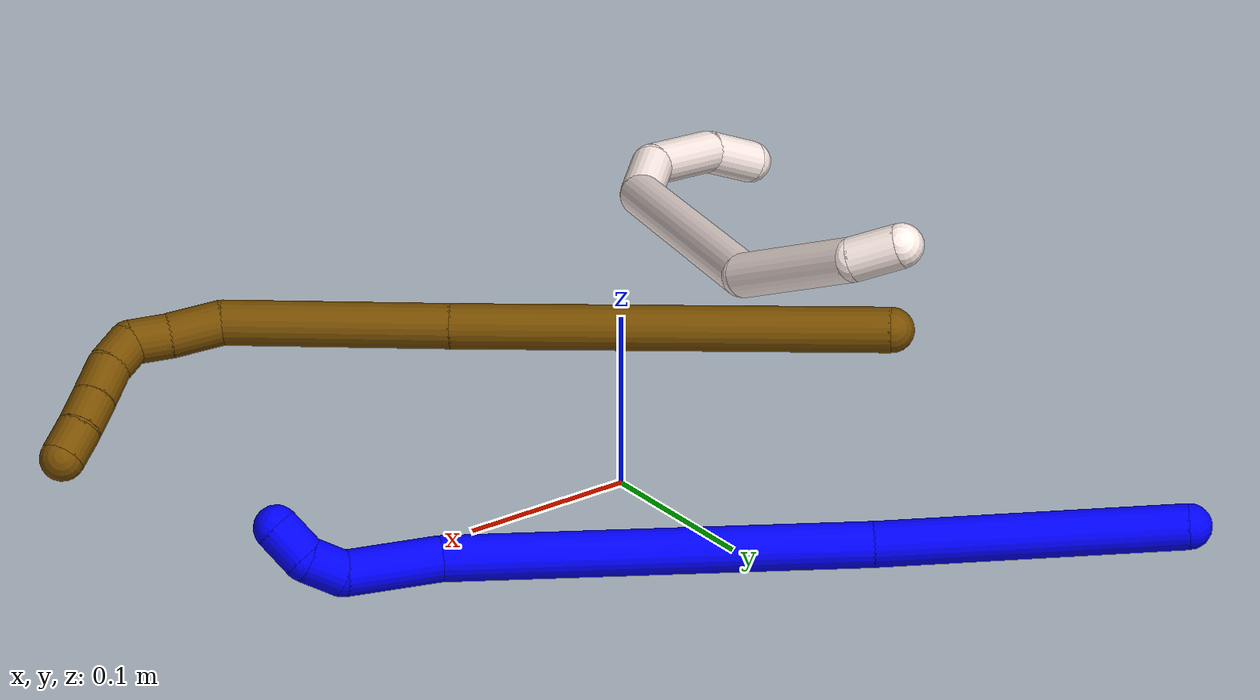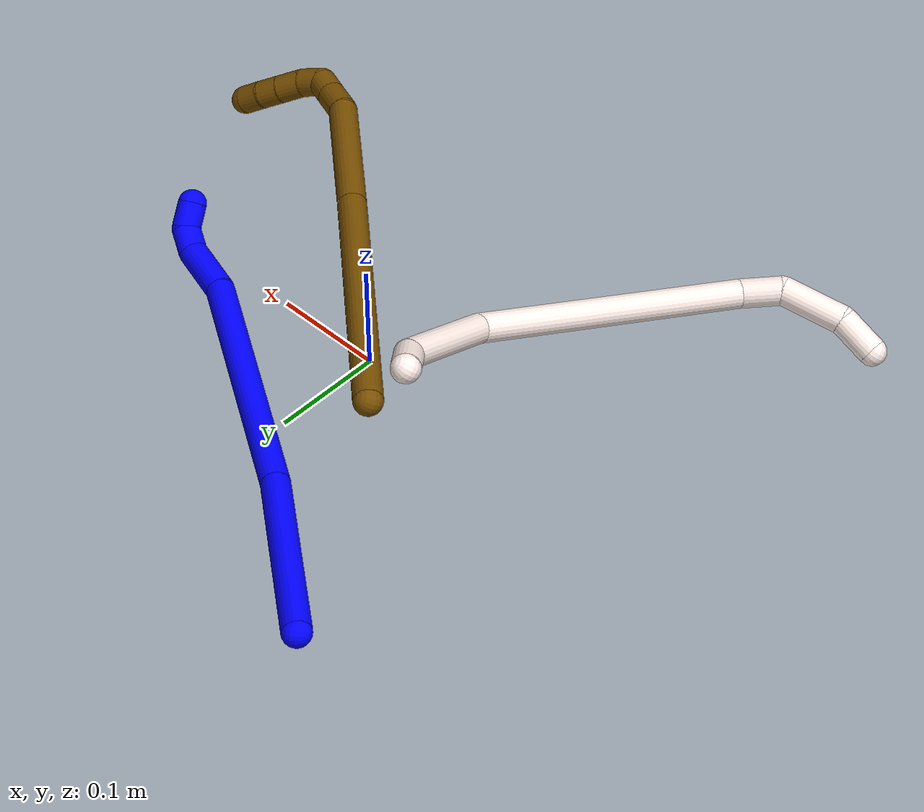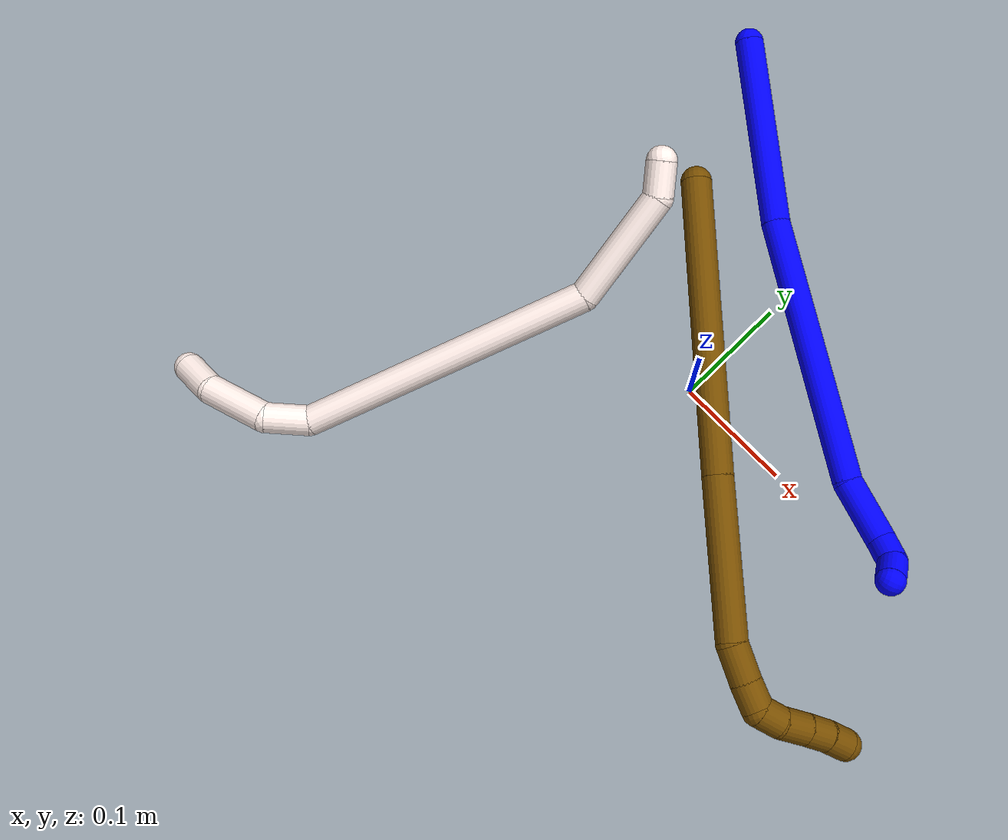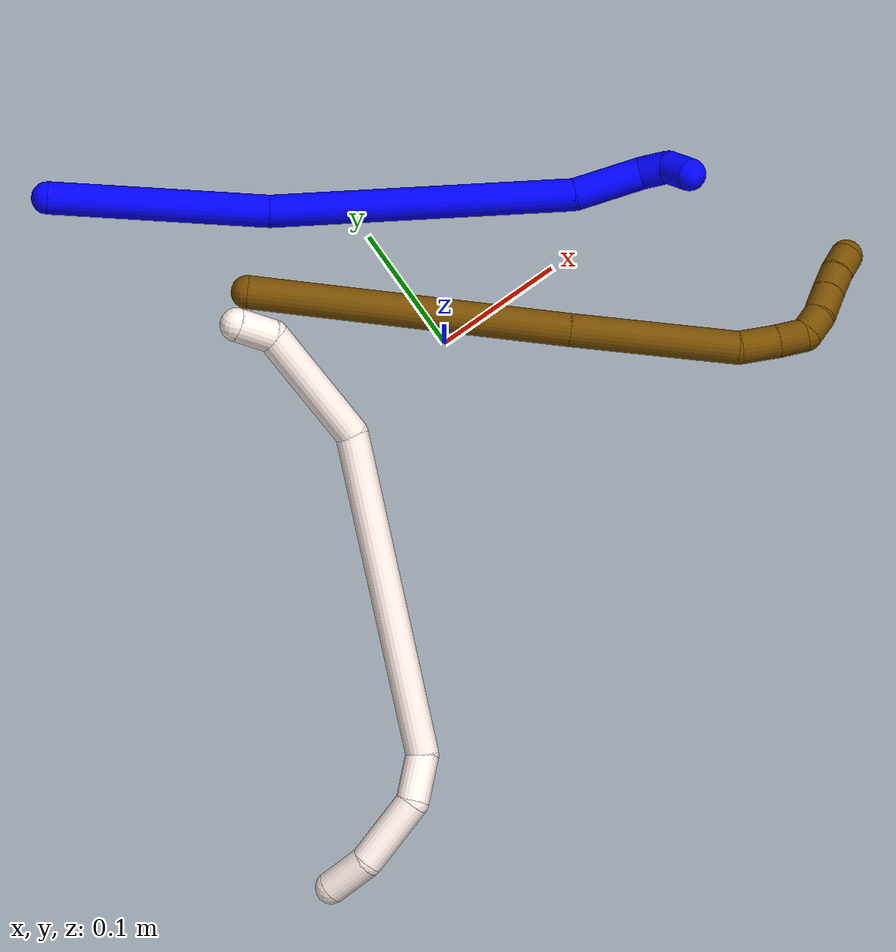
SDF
<sdf version="1.7">
 <world name="default">
  <model name="1">
   <static>0</static>
   <link name="1">
    <collision name="collision-cylinder-e_1_1_4">
     <pose>0.070437 -0.018913 0.04232 0.420274 0.988752 0.228926</pose>
     <geometry><cylinder><radius>0.0125</radius><length>0.168642</length></cylinder></geometry>
     <surface>
      <friction><ode><mu>1.16</mu><mu2>1.16</mu2><slip1>0</slip1><slip2>0</slip2></ode></friction>
      <contact><ode><kp>1e+06</kp><kd>1</kd><max_vel>0</max_vel><min_depth>0.001</min_depth></ode></contact>
     </surface>
    </collision>
    <visual name="visual-cylinder-e_1_1_4">
     <pose>0.070437 -0.018913 0.04232 0.420274 0.988752 0.228926</pose>
     <geometry><cylinder><radius>0.0125</radius><length>0.168642</length></cylinder></geometry>
     <material><ambient>0 0 1 1</ambient></material>
    </visual>
    <collision name="collision-cylinder-e_2_4_5">
     <pose>0.229159 -0.072352 0.151848 0.474563 0.862929 0.221768</pose>
     <geometry><cylinder><radius>0.0125</radius><length>0.232406</length></cylinder></geometry>
     <surface>
      <friction><ode><mu>1.16</mu><mu2>1.16</mu2><slip1>0</slip1><slip2>0</slip2></ode></friction>
      <contact><ode><kp>1e+06</kp><kd>1</kd><max_vel>0</max_vel><min_depth>0.001</min_depth></ode></contact>
     </surface>
    </collision>
    <visual name="visual-cylinder-e_2_4_5">
     <pose>0.229159 -0.072352 0.151848 0.474563 0.862929 0.221768</pose>
     <geometry><cylinder><radius>0.0125</radius><length>0.232406</length></cylinder></geometry>
     <material><ambient>0 0 1 1</ambient></material>
    </visual>
    <collision name="collision-cylinder-e_3_5_6">
     <pose>0.333214 -0.114386 0.239742 0.348195 0.621769 0.1129</pose>
     <geometry><cylinder><radius>0.0125</radius><length>0.054149</length></cylinder></geometry>
     <surface>
      <friction><ode><mu>1.16</mu><mu2>1.16</mu2><slip1>0</slip1><slip2>0</slip2></ode></friction>
      <contact><ode><kp>1e+06</kp><kd>1</kd><max_vel>0</max_vel><min_depth>0.001</min_depth></ode></contact>
     </surface>
    </collision>
    <visual name="visual-cylinder-e_3_5_6">
     <pose>0.333214 -0.114386 0.239742 0.348195 0.621769 0.1129</pose>
     <geometry><cylinder><radius>0.0125</radius><length>0.054149</length></cylinder></geometry>
     <material><ambient>0 0 1 1</ambient></material>
    </visual>
    <collision name="collision-cylinder-e_4_6_7">
     <pose>0.354595 -0.129693 0.266016 0.949073 0.529192 0.276589</pose>
     <geometry><cylinder><radius>0.0125</radius><length>0.022226</length></cylinder></geometry>
     <surface>
      <friction><ode><mu>1.16</mu><mu2>1.16</mu2><slip1>0</slip1><slip2>0</slip2></ode></friction>
      <contact><ode><kp>1e+06</kp><kd>1</kd><max_vel>0</max_vel><min_depth>0.001</min_depth></ode></contact>
     </surface>
    </collision>
    <visual name="visual-cylinder-e_4_6_7">
     <pose>0.354595 -0.129693 0.266016 0.949073 0.529192 0.276589</pose>
     <geometry><cylinder><radius>0.0125</radius><length>0.022226</length></cylinder></geometry>
     <material><ambient>0 0 1 1</ambient></material>
    </visual>
    <collision name="collision-cylinder-e_5_7_2">
     <pose>0.366682 -0.146725 0.271142 1.6207 0.611125 0.640362</pose>
     <geometry><cylinder><radius>0.0125</radius><length>0.022577</length></cylinder></geometry>
     <surface>
      <friction><ode><mu>1.16</mu><mu2>1.16</mu2><slip1>0</slip1><slip2>0</slip2></ode></friction>
      <contact><ode><kp>1e+06</kp><kd>1</kd><max_vel>0</max_vel><min_depth>0.001</min_depth></ode></contact>
     </surface>
    </collision>
    <visual name="visual-cylinder-e_5_7_2">
     <pose>0.366682 -0.146725 0.271142 1.6207 0.611125 0.640362</pose>
     <geometry><cylinder><radius>0.0125</radius><length>0.022577</length></cylinder></geometry>
     <material><ambient>0 0 1 1</ambient></material>
    </visual>
    <collision name="collision-sphere-2">
     <pose>0.373159 -0.155959 0.270681 0 -0 0</pose>
     <geometry><sphere><radius>0.0125</radius></sphere></geometry>
     <surface>
      <friction><ode><mu>1.16</mu><mu2>1.16</mu2><slip1>0</slip1><slip2>0</slip2></ode></friction>
      <contact><ode><kp>1e+06</kp><kd>1</kd><max_vel>0</max_vel><min_depth>0.001</min_depth></ode></contact>
     </surface>
    </collision>
    <visual name="visual-sphere-2">
     <pose>0.373159 -0.155959 0.270681 0 -0 0</pose>
     <geometry><sphere><radius>0.0125</radius></sphere></geometry>
     <material><ambient>0 0 1 1</ambient></material>
    </visual>
    <collision name="collision-sphere-7">
     <pose>0.360205 -0.137491 0.271603 0 -0 0</pose>
     <geometry><sphere><radius>0.0125</radius></sphere></geometry>
     <surface>
      <friction><ode><mu>1.16</mu><mu2>1.16</mu2><slip1>0</slip1><slip2>0</slip2></ode></friction>
      <contact><ode><kp>1e+06</kp><kd>1</kd><max_vel>0</max_vel><min_depth>0.001</min_depth></ode></contact>
     </surface>
    </collision>
    <visual name="visual-sphere-7">
     <pose>0.360205 -0.137491 0.271603 0 -0 0</pose>
     <geometry><sphere><radius>0.0125</radius></sphere></geometry>
     <material><ambient>0 0 1 1</ambient></material>
    </visual>
    <collision name="collision-sphere-6">
     <pose>0.348984 -0.121895 0.260429 0 -0 0</pose>
     <geometry><sphere><radius>0.0125</radius></sphere></geometry>
     <surface>
      <friction><ode><mu>1.16</mu><mu2>1.16</mu2><slip1>0</slip1><slip2>0</slip2></ode></friction>
      <contact><ode><kp>1e+06</kp><kd>1</kd><max_vel>0</max_vel><min_depth>0.001</min_depth></ode></contact>
     </surface>
    </collision>
    <visual name="visual-sphere-6">
     <pose>0.348984 -0.121895 0.260429 0 -0 0</pose>
     <geometry><sphere><radius>0.0125</radius></sphere></geometry>
     <material><ambient>0 0 1 1</ambient></material>
    </visual>
    <collision name="collision-sphere-5">
     <pose>0.317444 -0.106877 0.219055 0 -0 0</pose>
     <geometry><sphere><radius>0.0125</radius></sphere></geometry>
     <surface>
      <friction><ode><mu>1.16</mu><mu2>1.16</mu2><slip1>0</slip1><slip2>0</slip2></ode></friction>
      <contact><ode><kp>1e+06</kp><kd>1</kd><max_vel>0</max_vel><min_depth>0.001</min_depth></ode></contact>
     </surface>
    </collision>
    <visual name="visual-sphere-5">
     <pose>0.317444 -0.106877 0.219055 0 -0 0</pose>
     <geometry><sphere><radius>0.0125</radius></sphere></geometry>
     <material><ambient>0 0 1 1</ambient></material>
    </visual>
    <collision name="collision-sphere-1">
     <geometry><sphere><radius>0.0125</radius></sphere></geometry>
     <surface>
      <friction><ode><mu>1.16</mu><mu2>1.16</mu2><slip1>0</slip1><slip2>0</slip2></ode></friction>
      <contact><ode><kp>1e+06</kp><kd>1</kd><max_vel>0</max_vel><min_depth>0.001</min_depth></ode></contact>
     </surface>
    </collision>
    <visual name="visual-sphere-1">
     <geometry><sphere><radius>0.0125</radius></sphere></geometry>
     <material><ambient>0 0 1 1</ambient></material>
    </visual>
    <collision name="collision-sphere-4">
     <pose>0.140873 -0.037826 0.08464 0 -0 0</pose>
     <geometry><sphere><radius>0.0125</radius></sphere></geometry>
     <surface>
      <friction><ode><mu>1.16</mu><mu2>1.16</mu2><slip1>0</slip1><slip2>0</slip2></ode></friction>
      <contact><ode><kp>1e+06</kp><kd>1</kd><max_vel>0</max_vel><min_depth>0.001</min_depth></ode></contact>
     </surface>
    </collision>
    <visual name="visual-sphere-4">
     <pose>0.140873 -0.037826 0.08464 0 -0 0</pose>
     <geometry><sphere><radius>0.0125</radius></sphere></geometry>
     <material><ambient>0 0 1 1</ambient></material>
    </visual>
    <inertial>
     <pose>0.198679 -0.064787 0.134886 0 -0 0</pose>
     <mass>0.5</mass>
     <inertia>
      <ixx>0.001135</ixx>
      <ixy>0</ixy>
      <ixz>0</ixz>
      <iyy>0.001597</iyy>
      <iyz>0</iyz>
      <izz>-0.000719</izz>
     </inertia>
    </inertial>
   </link>
   <pose>-0.183557 0.261952 0.024733 -1.71955 0.267361 -1.22346</pose>
  </model>
  <model name="11">
   <static>0</static>
   <link name="11">
    <collision name="collision-cylinder-e_1_1_4">
     <pose>-0.013096 0.003415 0.005171 -0.58363 -1.12882 0.375873</pose>
     <geometry><cylinder><radius>0.0125</radius><length>0.028977</length></cylinder></geometry>
     <surface>
      <friction><ode><mu>1.16</mu><mu2>1.16</mu2><slip1>0</slip1><slip2>0</slip2></ode></friction>
      <contact><ode><kp>1e+06</kp><kd>1</kd><max_vel>0</max_vel><min_depth>0.001</min_depth></ode></contact>
     </surface>
    </collision>
    <visual name="visual-cylinder-e_1_1_4">
     <pose>-0.013096 0.003415 0.005171 -0.58363 -1.12882 0.375873</pose>
     <geometry><cylinder><radius>0.0125</radius><length>0.028977</length></cylinder></geometry>
     <material><ambient>1 0.933333 0.909804 1</ambient></material>
    </visual>
    <collision name="collision-cylinder-e_2_4_5">
     <pose>-0.058014 0.004236 0.046402 0.071793 -0.721762 -0.027105</pose>
     <geometry><cylinder><radius>0.0125</radius><length>0.096325</length></cylinder></geometry>
     <surface>
      <friction><ode><mu>1.16</mu><mu2>1.16</mu2><slip1>0</slip1><slip2>0</slip2></ode></friction>
      <contact><ode><kp>1e+06</kp><kd>1</kd><max_vel>0</max_vel><min_depth>0.001</min_depth></ode></contact>
     </surface>
    </collision>
    <visual name="visual-cylinder-e_2_4_5">
     <pose>-0.058014 0.004236 0.046402 0.071793 -0.721762 -0.027105</pose>
     <geometry><cylinder><radius>0.0125</radius><length>0.096325</length></cylinder></geometry>
     <material><ambient>1 0.933333 0.909804 1</ambient></material>
    </visual>
    <collision name="collision-cylinder-e_3_5_6">
     <pose>-0.129057 -0.047263 0.188254 0.433022 -0.324624 -0.072006</pose>
     <geometry><cylinder><radius>0.0125</radius><length>0.245945</length></cylinder></geometry>
     <surface>
      <friction><ode><mu>1.16</mu><mu2>1.16</mu2><slip1>0</slip1><slip2>0</slip2></ode></friction>
      <contact><ode><kp>1e+06</kp><kd>1</kd><max_vel>0</max_vel><min_depth>0.001</min_depth></ode></contact>
     </surface>
    </collision>
    <visual name="visual-cylinder-e_3_5_6">
     <pose>-0.129057 -0.047263 0.188254 0.433022 -0.324624 -0.072006</pose>
     <geometry><cylinder><radius>0.0125</radius><length>0.245945</length></cylinder></geometry>
     <material><ambient>1 0.933333 0.909804 1</ambient></material>
    </visual>
    <collision name="collision-cylinder-e_4_6_7">
     <pose>-0.166829 -0.109021 0.306985 0.782038 0.079396 0.032745</pose>
     <geometry><cylinder><radius>0.0125</radius><length>0.036589</length></cylinder></geometry>
     <surface>
      <friction><ode><mu>1.16</mu><mu2>1.16</mu2><slip1>0</slip1><slip2>0</slip2></ode></friction>
      <contact><ode><kp>1e+06</kp><kd>1</kd><max_vel>0</max_vel><min_depth>0.001</min_depth></ode></contact>
     </surface>
    </collision>
    <visual name="visual-cylinder-e_4_6_7">
     <pose>-0.166829 -0.109021 0.306985 0.782038 0.079396 0.032745</pose>
     <geometry><cylinder><radius>0.0125</radius><length>0.036589</length></cylinder></geometry>
     <material><ambient>1 0.933333 0.909804 1</ambient></material>
    </visual>
    <collision name="collision-cylinder-e_5_7_8">
     <pose>-0.150986 -0.132759 0.341416 0.468838 0.538496 0.131608</pose>
     <geometry><cylinder><radius>0.0125</radius><length>0.056127</length></cylinder></geometry>
     <surface>
      <friction><ode><mu>1.16</mu><mu2>1.16</mu2><slip1>0</slip1><slip2>0</slip2></ode></friction>
      <contact><ode><kp>1e+06</kp><kd>1</kd><max_vel>0</max_vel><min_depth>0.001</min_depth></ode></contact>
     </surface>
    </collision>
    <visual name="visual-cylinder-e_5_7_8">
     <pose>-0.150986 -0.132759 0.341416 0.468838 0.538496 0.131608</pose>
     <geometry><cylinder><radius>0.0125</radius><length>0.056127</length></cylinder></geometry>
     <material><ambient>1 0.933333 0.909804 1</ambient></material>
    </visual>
    <collision name="collision-cylinder-e_6_8_2">
     <pose>-0.124434 -0.144945 0.376142 0.097967 0.740742 0.038065</pose>
     <geometry><cylinder><radius>0.0125</radius><length>0.036038</length></cylinder></geometry>
     <surface>
      <friction><ode><mu>1.16</mu><mu2>1.16</mu2><slip1>0</slip1><slip2>0</slip2></ode></friction>
      <contact><ode><kp>1e+06</kp><kd>1</kd><max_vel>0</max_vel><min_depth>0.001</min_depth></ode></contact>
     </surface>
    </collision>
    <visual name="visual-cylinder-e_6_8_2">
     <pose>-0.124434 -0.144945 0.376142 0.097967 0.740742 0.038065</pose>
     <geometry><cylinder><radius>0.0125</radius><length>0.036038</length></cylinder></geometry>
     <material><ambient>1 0.933333 0.909804 1</ambient></material>
    </visual>
    <collision name="collision-sphere-2">
     <pose>-0.112274 -0.146246 0.389376 0 -0 0</pose>
     <geometry><sphere><radius>0.0125</radius></sphere></geometry>
     <surface>
      <friction><ode><mu>1.16</mu><mu2>1.16</mu2><slip1>0</slip1><slip2>0</slip2></ode></friction>
      <contact><ode><kp>1e+06</kp><kd>1</kd><max_vel>0</max_vel><min_depth>0.001</min_depth></ode></contact>
     </surface>
    </collision>
    <visual name="visual-sphere-2">
     <pose>-0.112274 -0.146246 0.389376 0 -0 0</pose>
     <geometry><sphere><radius>0.0125</radius></sphere></geometry>
     <material><ambient>1 0.933333 0.909804 1</ambient></material>
    </visual>
    <collision name="collision-sphere-4">
     <pose>-0.026192 0.00683 0.010342 0 -0 0</pose>
     <geometry><sphere><radius>0.0125</radius></sphere></geometry>
     <surface>
      <friction><ode><mu>1.16</mu><mu2>1.16</mu2><slip1>0</slip1><slip2>0</slip2></ode></friction>
      <contact><ode><kp>1e+06</kp><kd>1</kd><max_vel>0</max_vel><min_depth>0.001</min_depth></ode></contact>
     </surface>
    </collision>
    <visual name="visual-sphere-4">
     <pose>-0.026192 0.00683 0.010342 0 -0 0</pose>
     <geometry><sphere><radius>0.0125</radius></sphere></geometry>
     <material><ambient>1 0.933333 0.909804 1</ambient></material>
    </visual>
    <collision name="collision-sphere-1">
     <geometry><sphere><radius>0.0125</radius></sphere></geometry>
     <surface>
      <friction><ode><mu>1.16</mu><mu2>1.16</mu2><slip1>0</slip1><slip2>0</slip2></ode></friction>
      <contact><ode><kp>1e+06</kp><kd>1</kd><max_vel>0</max_vel><min_depth>0.001</min_depth></ode></contact>
     </surface>
    </collision>
    <visual name="visual-sphere-1">
     <geometry><sphere><radius>0.0125</radius></sphere></geometry>
     <material><ambient>1 0.933333 0.909804 1</ambient></material>
    </visual>
    <collision name="collision-sphere-8">
     <pose>-0.136593 -0.143644 0.362908 0 -0 0</pose>
     <geometry><sphere><radius>0.0125</radius></sphere></geometry>
     <surface>
      <friction><ode><mu>1.16</mu><mu2>1.16</mu2><slip1>0</slip1><slip2>0</slip2></ode></friction>
      <contact><ode><kp>1e+06</kp><kd>1</kd><max_vel>0</max_vel><min_depth>0.001</min_depth></ode></contact>
     </surface>
    </collision>
    <visual name="visual-sphere-8">
     <pose>-0.136593 -0.143644 0.362908 0 -0 0</pose>
     <geometry><sphere><radius>0.0125</radius></sphere></geometry>
     <material><ambient>1 0.933333 0.909804 1</ambient></material>
    </visual>
    <collision name="collision-sphere-5">
     <pose>-0.089835 0.001643 0.082462 0 -0 0</pose>
     <geometry><sphere><radius>0.0125</radius></sphere></geometry>
     <surface>
      <friction><ode><mu>1.16</mu><mu2>1.16</mu2><slip1>0</slip1><slip2>0</slip2></ode></friction>
      <contact><ode><kp>1e+06</kp><kd>1</kd><max_vel>0</max_vel><min_depth>0.001</min_depth></ode></contact>
     </surface>
    </collision>
    <visual name="visual-sphere-5">
     <pose>-0.089835 0.001643 0.082462 0 -0 0</pose>
     <geometry><sphere><radius>0.0125</radius></sphere></geometry>
     <material><ambient>1 0.933333 0.909804 1</ambient></material>
    </visual>
    <collision name="collision-sphere-6">
     <pose>-0.16828 -0.096169 0.294047 0 -0 0</pose>
     <geometry><sphere><radius>0.0125</radius></sphere></geometry>
     <surface>
      <friction><ode><mu>1.16</mu><mu2>1.16</mu2><slip1>0</slip1><slip2>0</slip2></ode></friction>
      <contact><ode><kp>1e+06</kp><kd>1</kd><max_vel>0</max_vel><min_depth>0.001</min_depth></ode></contact>
     </surface>
    </collision>
    <visual name="visual-sphere-6">
     <pose>-0.16828 -0.096169 0.294047 0 -0 0</pose>
     <geometry><sphere><radius>0.0125</radius></sphere></geometry>
     <material><ambient>1 0.933333 0.909804 1</ambient></material>
    </visual>
    <collision name="collision-sphere-7">
     <pose>-0.165378 -0.121873 0.319924 0 -0 0</pose>
     <geometry><sphere><radius>0.0125</radius></sphere></geometry>
     <surface>
      <friction><ode><mu>1.16</mu><mu2>1.16</mu2><slip1>0</slip1><slip2>0</slip2></ode></friction>
      <contact><ode><kp>1e+06</kp><kd>1</kd><max_vel>0</max_vel><min_depth>0.001</min_depth></ode></contact>
     </surface>
    </collision>
    <visual name="visual-sphere-7">
     <pose>-0.165378 -0.121873 0.319924 0 -0 0</pose>
     <geometry><sphere><radius>0.0125</radius></sphere></geometry>
     <material><ambient>1 0.933333 0.909804 1</ambient></material>
    </visual>
    <inertial>
     <pose>-0.113543 -0.055562 0.18974 0 -0 0</pose>
     <mass>0.5</mass>
     <inertia>
      <ixx>0.001172</ixx>
      <ixy>0</ixy>
      <ixz>0</ixz>
      <iyy>0.001153</iyy>
      <iyz>0</iyz>
      <izz>0.000982</izz>
     </inertia>
    </inertial>
   </link>
   <pose>-0.127046 0.082766 0.139149 -2.24863 0.025444 2.40519</pose>
  </model>
  <model name="12">
   <static>0</static>
   <link name="12">
    <collision name="collision-cylinder-e_1_1_4">
     <pose>0.11493 -0.028857 -0.018034 2.12935 1.28293 1.86465</pose>
     <geometry><cylinder><radius>0.0125</radius><length>0.239724</length></cylinder></geometry>
     <surface>
      <friction><ode><mu>1.16</mu><mu2>1.16</mu2><slip1>0</slip1><slip2>0</slip2></ode></friction>
      <contact><ode><kp>1e+06</kp><kd>1</kd><max_vel>0</max_vel><min_depth>0.001</min_depth></ode></contact>
     </surface>
    </collision>
    <visual name="visual-cylinder-e_1_1_4">
     <pose>0.11493 -0.028857 -0.018034 2.12935 1.28293 1.86465</pose>
     <geometry><cylinder><radius>0.0125</radius><length>0.239724</length></cylinder></geometry>
     <material><ambient>0.466667 0.301961 0 1</ambient></material>
    </visual>
    <collision name="collision-cylinder-e_2_4_5">
     <pose>0.289988 -0.073197 -0.044558 2.0724 1.28517 1.80316</pose>
     <geometry><cylinder><radius>0.0125</radius><length>0.125334</length></cylinder></geometry>
     <surface>
      <friction><ode><mu>1.16</mu><mu2>1.16</mu2><slip1>0</slip1><slip2>0</slip2></ode></friction>
      <contact><ode><kp>1e+06</kp><kd>1</kd><max_vel>0</max_vel><min_depth>0.001</min_depth></ode></contact>
     </surface>
    </collision>
    <visual name="visual-cylinder-e_2_4_5">
     <pose>0.289988 -0.073197 -0.044558 2.0724 1.28517 1.80316</pose>
     <geometry><cylinder><radius>0.0125</radius><length>0.125334</length></cylinder></geometry>
     <material><ambient>0.466667 0.301961 0 1</ambient></material>
    </visual>
    <collision name="collision-cylinder-e_3_5_6">
     <pose>0.365003 -0.088241 -0.052509 -0.680929 1.52418 -0.652103</pose>
     <geometry><cylinder><radius>0.0125</radius><length>0.029806</length></cylinder></geometry>
     <surface>
      <friction><ode><mu>1.16</mu><mu2>1.16</mu2><slip1>0</slip1><slip2>0</slip2></ode></friction>
      <contact><ode><kp>1e+06</kp><kd>1</kd><max_vel>0</max_vel><min_depth>0.001</min_depth></ode></contact>
     </surface>
    </collision>
    <visual name="visual-cylinder-e_3_5_6">
     <pose>0.365003 -0.088241 -0.052509 -0.680929 1.52418 -0.652103</pose>
     <geometry><cylinder><radius>0.0125</radius><length>0.029806</length></cylinder></geometry>
     <material><ambient>0.466667 0.301961 0 1</ambient></material>
    </visual>
    <collision name="collision-cylinder-e_4_6_7">
     <pose>0.390638 -0.088258 -0.050529 0.305775 1.43118 0.266315</pose>
     <geometry><cylinder><radius>0.0125</radius><length>0.021706</length></cylinder></geometry>
     <surface>
      <friction><ode><mu>1.16</mu><mu2>1.16</mu2><slip1>0</slip1><slip2>0</slip2></ode></friction>
      <contact><ode><kp>1e+06</kp><kd>1</kd><max_vel>0</max_vel><min_depth>0.001</min_depth></ode></contact>
     </surface>
    </collision>
    <visual name="visual-cylinder-e_4_6_7">
     <pose>0.390638 -0.088258 -0.050529 0.305775 1.43118 0.266315</pose>
     <geometry><cylinder><radius>0.0125</radius><length>0.021706</length></cylinder></geometry>
     <material><ambient>0.466667 0.301961 0 1</ambient></material>
    </visual>
    <collision name="collision-cylinder-e_5_7_8">
     <pose>0.40844 -0.083034 -0.04449 -0.890104 0.767768 -0.380653</pose>
     <geometry><cylinder><radius>0.0125</radius><length>0.020315</length></cylinder></geometry>
     <surface>
      <friction><ode><mu>1.16</mu><mu2>1.16</mu2><slip1>0</slip1><slip2>0</slip2></ode></friction>
      <contact><ode><kp>1e+06</kp><kd>1</kd><max_vel>0</max_vel><min_depth>0.001</min_depth></ode></contact>
     </surface>
    </collision>
    <visual name="visual-cylinder-e_5_7_8">
     <pose>0.40844 -0.083034 -0.04449 -0.890104 0.767768 -0.380653</pose>
     <geometry><cylinder><radius>0.0125</radius><length>0.020315</length></cylinder></geometry>
     <material><ambient>0.466667 0.301961 0 1</ambient></material>
    </visual>
    <collision name="collision-cylinder-e_6_8_9">
     <pose>0.421407 -0.069189 -0.034523 -0.989306 0.544129 -0.298713</pose>
     <geometry><cylinder><radius>0.0125</radius><length>0.022843</length></cylinder></geometry>
     <surface>
      <friction><ode><mu>1.16</mu><mu2>1.16</mu2><slip1>0</slip1><slip2>0</slip2></ode></friction>
      <contact><ode><kp>1e+06</kp><kd>1</kd><max_vel>0</max_vel><min_depth>0.001</min_depth></ode></contact>
     </surface>
    </collision>
    <visual name="visual-cylinder-e_6_8_9">
     <pose>0.421407 -0.069189 -0.034523 -0.989306 0.544129 -0.298713</pose>
     <geometry><cylinder><radius>0.0125</radius><length>0.022843</length></cylinder></geometry>
     <material><ambient>0.466667 0.301961 0 1</ambient></material>
    </visual>
    <collision name="collision-cylinder-e_7_9_10">
     <pose>0.43277 -0.053839 -0.024693 -1.01493 0.572486 -0.324434</pose>
     <geometry><cylinder><radius>0.0125</radius><length>0.020123</length></cylinder></geometry>
     <surface>
      <friction><ode><mu>1.16</mu><mu2>1.16</mu2><slip1>0</slip1><slip2>0</slip2></ode></friction>
      <contact><ode><kp>1e+06</kp><kd>1</kd><max_vel>0</max_vel><min_depth>0.001</min_depth></ode></contact>
     </surface>
    </collision>
    <visual name="visual-cylinder-e_7_9_10">
     <pose>0.43277 -0.053839 -0.024693 -1.01493 0.572486 -0.324434</pose>
     <geometry><cylinder><radius>0.0125</radius><length>0.020123</length></cylinder></geometry>
     <material><ambient>0.466667 0.301961 0 1</ambient></material>
    </visual>
    <collision name="collision-cylinder-e_8_10_2">
     <pose>0.4444 -0.039478 -0.016795 -1.12442 0.660277 -0.425273</pose>
     <geometry><cylinder><radius>0.0125</radius><length>0.020149</length></cylinder></geometry>
     <surface>
      <friction><ode><mu>1.16</mu><mu2>1.16</mu2><slip1>0</slip1><slip2>0</slip2></ode></friction>
      <contact><ode><kp>1e+06</kp><kd>1</kd><max_vel>0</max_vel><min_depth>0.001</min_depth></ode></contact>
     </surface>
    </collision>
    <visual name="visual-cylinder-e_8_10_2">
     <pose>0.4444 -0.039478 -0.016795 -1.12442 0.660277 -0.425273</pose>
     <geometry><cylinder><radius>0.0125</radius><length>0.020149</length></cylinder></geometry>
     <material><ambient>0.466667 0.301961 0 1</ambient></material>
    </visual>
    <collision name="collision-sphere-2">
     <pose>0.450579 -0.0323 -0.01336 0 -0 0</pose>
     <geometry><sphere><radius>0.0125</radius></sphere></geometry>
     <surface>
      <friction><ode><mu>1.16</mu><mu2>1.16</mu2><slip1>0</slip1><slip2>0</slip2></ode></friction>
      <contact><ode><kp>1e+06</kp><kd>1</kd><max_vel>0</max_vel><min_depth>0.001</min_depth></ode></contact>
     </surface>
    </collision>
    <visual name="visual-sphere-2">
     <pose>0.450579 -0.0323 -0.01336 0 -0 0</pose>
     <geometry><sphere><radius>0.0125</radius></sphere></geometry>
     <material><ambient>0.466667 0.301961 0 1</ambient></material>
    </visual>
    <collision name="collision-sphere-10">
     <pose>0.43822 -0.046655 -0.02023 0 -0 0</pose>
     <geometry><sphere><radius>0.0125</radius></sphere></geometry>
     <surface>
      <friction><ode><mu>1.16</mu><mu2>1.16</mu2><slip1>0</slip1><slip2>0</slip2></ode></friction>
      <contact><ode><kp>1e+06</kp><kd>1</kd><max_vel>0</max_vel><min_depth>0.001</min_depth></ode></contact>
     </surface>
    </collision>
    <visual name="visual-sphere-10">
     <pose>0.43822 -0.046655 -0.02023 0 -0 0</pose>
     <geometry><sphere><radius>0.0125</radius></sphere></geometry>
     <material><ambient>0.466667 0.301961 0 1</ambient></material>
    </visual>
    <collision name="collision-sphere-9">
     <pose>0.427319 -0.061023 -0.029156 0 -0 0</pose>
     <geometry><sphere><radius>0.0125</radius></sphere></geometry>
     <surface>
      <friction><ode><mu>1.16</mu><mu2>1.16</mu2><slip1>0</slip1><slip2>0</slip2></ode></friction>
      <contact><ode><kp>1e+06</kp><kd>1</kd><max_vel>0</max_vel><min_depth>0.001</min_depth></ode></contact>
     </surface>
    </collision>
    <visual name="visual-sphere-9">
     <pose>0.427319 -0.061023 -0.029156 0 -0 0</pose>
     <geometry><sphere><radius>0.0125</radius></sphere></geometry>
     <material><ambient>0.466667 0.301961 0 1</ambient></material>
    </visual>
    <collision name="collision-sphere-4">
     <pose>0.22986 -0.057715 -0.036068 0 -0 0</pose>
     <geometry><sphere><radius>0.0125</radius></sphere></geometry>
     <surface>
      <friction><ode><mu>1.16</mu><mu2>1.16</mu2><slip1>0</slip1><slip2>0</slip2></ode></friction>
      <contact><ode><kp>1e+06</kp><kd>1</kd><max_vel>0</max_vel><min_depth>0.001</min_depth></ode></contact>
     </surface>
    </collision>
    <visual name="visual-sphere-4">
     <pose>0.22986 -0.057715 -0.036068 0 -0 0</pose>
     <geometry><sphere><radius>0.0125</radius></sphere></geometry>
     <material><ambient>0.466667 0.301961 0 1</ambient></material>
    </visual>
    <collision name="collision-sphere-1">
     <geometry><sphere><radius>0.0125</radius></sphere></geometry>
     <surface>
      <friction><ode><mu>1.16</mu><mu2>1.16</mu2><slip1>0</slip1><slip2>0</slip2></ode></friction>
      <contact><ode><kp>1e+06</kp><kd>1</kd><max_vel>0</max_vel><min_depth>0.001</min_depth></ode></contact>
     </surface>
    </collision>
    <visual name="visual-sphere-1">
     <geometry><sphere><radius>0.0125</radius></sphere></geometry>
     <material><ambient>0.466667 0.301961 0 1</ambient></material>
    </visual>
    <collision name="collision-sphere-8">
     <pose>0.415494 -0.077355 -0.03989 0 -0 0</pose>
     <geometry><sphere><radius>0.0125</radius></sphere></geometry>
     <surface>
      <friction><ode><mu>1.16</mu><mu2>1.16</mu2><slip1>0</slip1><slip2>0</slip2></ode></friction>
      <contact><ode><kp>1e+06</kp><kd>1</kd><max_vel>0</max_vel><min_depth>0.001</min_depth></ode></contact>
     </surface>
    </collision>
    <visual name="visual-sphere-8">
     <pose>0.415494 -0.077355 -0.03989 0 -0 0</pose>
     <geometry><sphere><radius>0.0125</radius></sphere></geometry>
     <material><ambient>0.466667 0.301961 0 1</ambient></material>
    </visual>
    <collision name="collision-sphere-5">
     <pose>0.350116 -0.088678 -0.053048 0 -0 0</pose>
     <geometry><sphere><radius>0.0125</radius></sphere></geometry>
     <surface>
      <friction><ode><mu>1.16</mu><mu2>1.16</mu2><slip1>0</slip1><slip2>0</slip2></ode></friction>
      <contact><ode><kp>1e+06</kp><kd>1</kd><max_vel>0</max_vel><min_depth>0.001</min_depth></ode></contact>
     </surface>
    </collision>
    <visual name="visual-sphere-5">
     <pose>0.350116 -0.088678 -0.053048 0 -0 0</pose>
     <geometry><sphere><radius>0.0125</radius></sphere></geometry>
     <material><ambient>0.466667 0.301961 0 1</ambient></material>
    </visual>
    <collision name="collision-sphere-6">
     <pose>0.37989 -0.087804 -0.051969 0 -0 0</pose>
     <geometry><sphere><radius>0.0125</radius></sphere></geometry>
     <surface>
      <friction><ode><mu>1.16</mu><mu2>1.16</mu2><slip1>0</slip1><slip2>0</slip2></ode></friction>
      <contact><ode><kp>1e+06</kp><kd>1</kd><max_vel>0</max_vel><min_depth>0.001</min_depth></ode></contact>
     </surface>
    </collision>
    <visual name="visual-sphere-6">
     <pose>0.37989 -0.087804 -0.051969 0 -0 0</pose>
     <geometry><sphere><radius>0.0125</radius></sphere></geometry>
     <material><ambient>0.466667 0.301961 0 1</ambient></material>
    </visual>
    <collision name="collision-sphere-7">
     <pose>0.401385 -0.088713 -0.049089 0 -0 0</pose>
     <geometry><sphere><radius>0.0125</radius></sphere></geometry>
     <surface>
      <friction><ode><mu>1.16</mu><mu2>1.16</mu2><slip1>0</slip1><slip2>0</slip2></ode></friction>
      <contact><ode><kp>1e+06</kp><kd>1</kd><max_vel>0</max_vel><min_depth>0.001</min_depth></ode></contact>
     </surface>
    </collision>
    <visual name="visual-sphere-7">
     <pose>0.401385 -0.088713 -0.049089 0 -0 0</pose>
     <geometry><sphere><radius>0.0125</radius></sphere></geometry>
     <material><ambient>0.466667 0.301961 0 1</ambient></material>
    </visual>
    <inertial>
     <pose>0.237684 -0.051568 -0.030195 0 -0 0</pose>
     <mass>0.5</mass>
     <inertia>
      <ixx>0.000293</ixx>
      <ixy>0</ixy>
      <ixz>0</ixz>
      <iyy>0.001601</iyy>
      <iyz>0</iyz>
      <izz>-0.000966</izz>
     </inertia>
    </inertial>
   </link>
   <pose>-0.104938 0.103327 0.102623 -1.0318 0.170207 -0.472611</pose>
  </model>
 </world>
</sdf>
